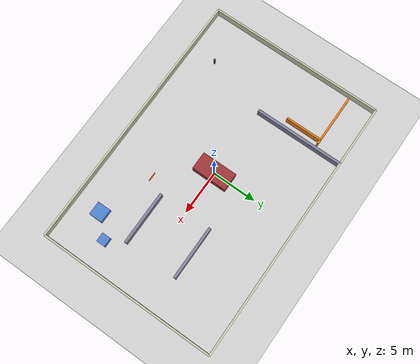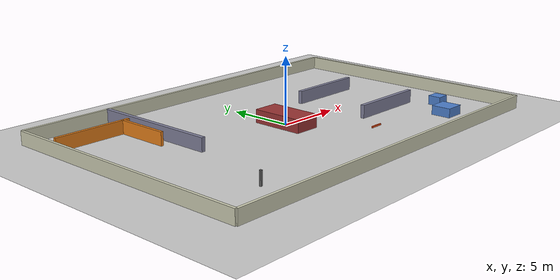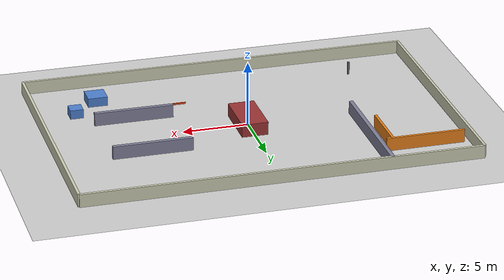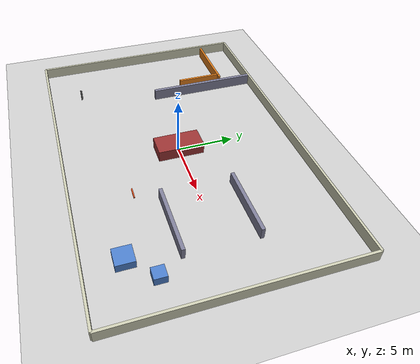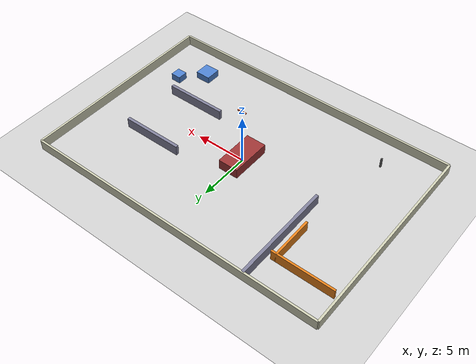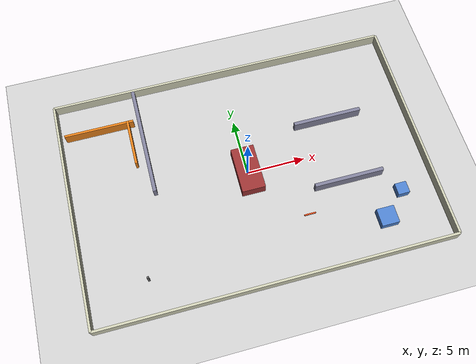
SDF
<?xml version="1.0"?>
<sdf version="1.6">
  <world name="explore_room">

    <include><uri>model://sun</uri></include>
    <include><uri>model://ground_plane</uri></include>

    <physics name="default_physics" type="ode">
      <max_step_size>0.005</max_step_size>
      <real_time_factor>1.0</real_time_factor>
    </physics>

    <!-- ═══════════ Closed room 30m × 20m (inner walls) ═══════════ -->
    <!-- Lidar range 15m → robot can't see full room from any single point -->

    <!-- North wall (y=+10) -->
    <model name="wall_n">
      <pose>0 10.0 0.5 0 0 0</pose>
      <static>true</static>
      <link name="link">
        <collision name="collision"><geometry><box><size>30.0 0.2 1.0</size></box></geometry></collision>
        <visual name="visual"><geometry><box><size>30.0 0.2 1.0</size></box></geometry>
          <material><ambient>0.8 0.8 0.7 1</ambient><diffuse>0.8 0.8 0.7 1</diffuse></material>
        </visual>
      </link>
    </model>

    <!-- South wall (y=-10) -->
    <model name="wall_s">
      <pose>0 -10.0 0.5 0 0 0</pose>
      <static>true</static>
      <link name="link">
        <collision name="collision"><geometry><box><size>30.0 0.2 1.0</size></box></geometry></collision>
        <visual name="visual"><geometry><box><size>30.0 0.2 1.0</size></box></geometry>
          <material><ambient>0.8 0.8 0.7 1</ambient><diffuse>0.8 0.8 0.7 1</diffuse></material>
        </visual>
      </link>
    </model>

    <!-- East wall (x=+15) -->
    <model name="wall_e">
      <pose>15.0 0 0.5 0 0 0</pose>
      <static>true</static>
      <link name="link">
        <collision name="collision"><geometry><box><size>0.2 20.0 1.0</size></box></geometry></collision>
        <visual name="visual"><geometry><box><size>0.2 20.0 1.0</size></box></geometry>
          <material><ambient>0.8 0.8 0.7 1</ambient><diffuse>0.8 0.8 0.7 1</diffuse></material>
        </visual>
      </link>
    </model>

    <!-- West wall (x=-15) -->
    <model name="wall_w">
      <pose>-15.0 0 0.5 0 0 0</pose>
      <static>true</static>
      <link name="link">
        <collision name="collision"><geometry><box><size>0.2 20.0 1.0</size></box></geometry></collision>
        <visual name="visual"><geometry><box><size>0.2 20.0 1.0</size></box></geometry>
          <material><ambient>0.8 0.8 0.7 1</ambient><diffuse>0.8 0.8 0.7 1</diffuse></material>
        </visual>
      </link>
    </model>

    <!-- ═══════════ Interior obstacles (occlusion-rich for frontier generation) ═══════════ -->

    <!-- Central wall block (creates major occlusion zones) -->
    <model name="central_block">
      <pose>0 0 0.5 0 0 0</pose>
      <static>true</static>
      <link name="link">
        <collision name="collision"><geometry><box><size>2.0 4.0 1.0</size></box></geometry></collision>
        <visual name="visual"><geometry><box><size>2.0 4.0 1.0</size></box></geometry>
          <material><ambient>0.6 0.2 0.2 1</ambient><diffuse>0.6 0.2 0.2 1</diffuse></material>
        </visual>
      </link>
    </model>

    <!-- East wing wall (occludes east corridor) -->
    <model name="east_wall_a">
      <pose>8.0 3.0 0.5 0 0 0</pose>
      <static>true</static>
      <link name="link">
        <collision name="collision"><geometry><box><size>6.0 0.3 1.0</size></box></geometry></collision>
        <visual name="visual"><geometry><box><size>6.0 0.3 1.0</size></box></geometry>
          <material><ambient>0.5 0.5 0.6 1</ambient><diffuse>0.5 0.5 0.6 1</diffuse></material>
        </visual>
      </link>
    </model>
    <model name="east_wall_b">
      <pose>8.0 -3.0 0.5 0 0 0</pose>
      <static>true</static>
      <link name="link">
        <collision name="collision"><geometry><box><size>6.0 0.3 1.0</size></box></geometry></collision>
        <visual name="visual"><geometry><box><size>6.0 0.3 1.0</size></box></geometry>
          <material><ambient>0.5 0.5 0.6 1</ambient><diffuse>0.5 0.5 0.6 1</diffuse></material>
        </visual>
      </link>
    </model>

    <!-- West partition (creates rooms) -->
    <model name="west_part_a">
      <pose>-8.0 5.0 0.5 0 0 0</pose>
      <static>true</static>
      <link name="link">
        <collision name="collision"><geometry><box><size>0.3 10.0 1.0</size></box></geometry></collision>
        <visual name="visual"><geometry><box><size>0.3 10.0 1.0</size></box></geometry>
          <material><ambient>0.5 0.5 0.6 1</ambient><diffuse>0.5 0.5 0.6 1</diffuse></material>
        </visual>
      </link>
    </model>
    <!-- Gap in west partition at y∈[-5,-0.5] → passable -->

    <!-- NW dead-end pocket (blacklist test) -->
    <model name="pocket_n">
      <pose>-11.5 7.0 0.5 0 0 0</pose>
      <static>true</static>
      <link name="link">
        <collision name="collision"><geometry><box><size>6.0 0.2 1.0</size></box></geometry></collision>
        <visual name="visual"><geometry><box><size>6.0 0.2 1.0</size></box></geometry>
          <material><ambient>0.9 0.5 0.1 1</ambient><diffuse>0.9 0.5 0.1 1</diffuse></material>
        </visual>
      </link>
    </model>
    <model name="pocket_e">
      <pose>-9.0 5.0 0.5 0 0 0</pose>
      <static>true</static>
      <link name="link">
        <collision name="collision"><geometry><box><size>0.2 4.2 1.0</size></box></geometry></collision>
        <visual name="visual"><geometry><box><size>0.2 4.2 1.0</size></box></geometry>
          <material><ambient>0.9 0.5 0.1 1</ambient><diffuse>0.9 0.5 0.1 1</diffuse></material>
        </visual>
      </link>
    </model>

    <!-- SE corner cluster -->
    <model name="se_box1">
      <pose>10.0 -7.0 0.35 0 0 0</pose>
      <static>true</static>
      <link name="link">
        <collision name="collision"><geometry><box><size>1.5 1.5 0.7</size></box></geometry></collision>
        <visual name="visual"><geometry><box><size>1.5 1.5 0.7</size></box></geometry>
          <material><ambient>0.3 0.5 0.8 1</ambient><diffuse>0.3 0.5 0.8 1</diffuse></material>
        </visual>
      </link>
    </model>
    <model name="se_box2">
      <pose>12.0 -5.0 0.35 0 0 0</pose>
      <static>true</static>
      <link name="link">
        <collision name="collision"><geometry><box><size>1.0 1.0 0.7</size></box></geometry></collision>
        <visual name="visual"><geometry><box><size>1.0 1.0 0.7</size></box></geometry>
          <material><ambient>0.3 0.5 0.8 1</ambient><diffuse>0.3 0.5 0.8 1</diffuse></material>
        </visual>
      </link>
    </model>

    <!-- Low bar -->
    <model name="low_bar">
      <pose>4.0 -5.0 0.06 0 0 0</pose>
      <static>true</static>
      <link name="link">
        <collision name="collision"><geometry><box><size>1.0 0.10 0.12</size></box></geometry></collision>
        <visual name="visual"><geometry><box><size>1.0 0.10 0.12</size></box></geometry>
          <material><ambient>0.9 0.3 0.1 1</ambient><diffuse>0.9 0.3 0.1 1</diffuse></material>
        </visual>
      </link>
    </model>

    <!-- SW pillar -->
    <model name="sw_pillar">
      <pose>-10.0 -7.0 0.5 0 0 0</pose>
      <static>true</static>
      <link name="link">
        <collision name="collision"><geometry><box><size>0.15 0.15 1.0</size></box></geometry></collision>
        <visual name="visual"><geometry><box><size>0.15 0.15 1.0</size></box></geometry>
          <material><ambient>0.4 0.4 0.4 1</ambient><diffuse>0.4 0.4 0.4 1</diffuse></material>
        </visual>
      </link>
    </model>

  </world>
</sdf>
